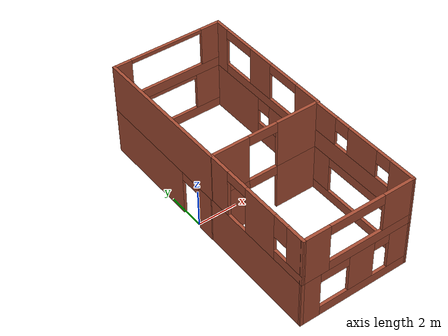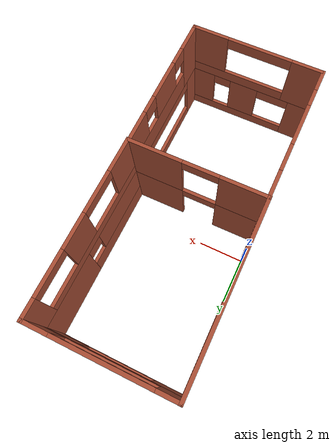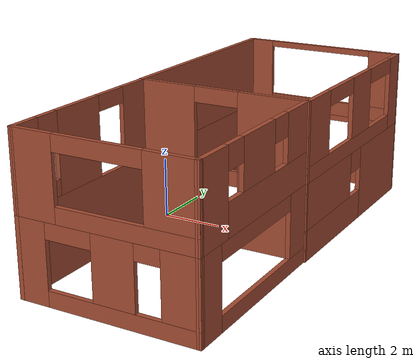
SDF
<sdf version="1.6">
 <model name="HouseTwoLevels">
  <pose>-1.03567 -0.470569 0 0 -0 0</pose>
  <link name="Wall_10">
   <pose>3.85116 -6.69618 0 0 -0 0</pose>
   <visual name="Wall_10_Visual_0">
    <pose>-2.4133 0 1.25 0 -0 0</pose>
    <geometry><box><size>1.01353 0.15 2.5</size></box></geometry>
    <material>
     <script><uri>file://media/materials/scripts/gazebo.material</uri><name>Gazebo/Bricks</name></script>
     <ambient>1 1 1 1</ambient>
    </material>
   </visual>
   <collision name="Wall_10_Collision_0">
    <geometry><box><size>1.01353 0.15 2.5</size></box></geometry>
    <pose>-2.4133 0 1.25 0 -0 0</pose>
   </collision>
   <visual name="Wall_10_Visual_1">
    <pose>0.506767 0 0.25 0 -0 0</pose>
    <geometry><box><size>4.8266 0.15 0.5</size></box></geometry>
    <material>
     <script><uri>file://media/materials/scripts/gazebo.material</uri><name>Gazebo/Bricks</name></script>
     <ambient>1 1 1 1</ambient>
    </material>
   </visual>
   <collision name="Wall_10_Collision_1">
    <geometry><box><size>4.8266 0.15 0.5</size></box></geometry>
    <pose>0.506767 0 0.25 0 -0 0</pose>
   </collision>
   <visual name="Wall_10_Visual_2">
    <pose>0.267522 0 1.5 0 -0 0</pose>
    <geometry><box><size>1.34811 0.15 2</size></box></geometry>
    <material>
     <script><uri>file://media/materials/scripts/gazebo.material</uri><name>Gazebo/Bricks</name></script>
     <ambient>1 1 1 1</ambient>
    </material>
   </visual>
   <collision name="Wall_10_Collision_2">
    <geometry><box><size>1.34811 0.15 2</size></box></geometry>
    <pose>0.267522 0 1.5 0 -0 0</pose>
   </collision>
   <visual name="Wall_10_Visual_3">
    <pose>2.33082 0 1.5 0 -0 0</pose>
    <geometry><box><size>1.17849 0.15 2</size></box></geometry>
    <material>
     <script><uri>file://media/materials/scripts/gazebo.material</uri><name>Gazebo/Bricks</name></script>
     <ambient>1 1 1 1</ambient>
    </material>
   </visual>
   <collision name="Wall_10_Collision_3">
    <geometry><box><size>1.17849 0.15 2</size></box></geometry>
    <pose>2.33082 0 1.5 0 -0 0</pose>
   </collision>
   <visual name="Wall_10_Visual_4">
    <pose>-1.15653 0 2.25 0 -0 0</pose>
    <geometry><box><size>1.5 0.15 0.5</size></box></geometry>
    <material>
     <script><uri>file://media/materials/scripts/gazebo.material</uri><name>Gazebo/Bricks</name></script>
     <ambient>1 1 1 1</ambient>
    </material>
   </visual>
   <collision name="Wall_10_Collision_4">
    <geometry><box><size>1.5 0.15 0.5</size></box></geometry>
    <pose>-1.15653 0 2.25 0 -0 0</pose>
   </collision>
   <visual name="Wall_10_Visual_5">
    <pose>1.34157 0 2.25 0 -0 0</pose>
    <geometry><box><size>0.8 0.15 0.5</size></box></geometry>
    <material>
     <script><uri>file://media/materials/scripts/gazebo.material</uri><name>Gazebo/Bricks</name></script>
     <ambient>1 1 1 1</ambient>
    </material>
   </visual>
   <collision name="Wall_10_Collision_5">
    <geometry><box><size>0.8 0.15 0.5</size></box></geometry>
    <pose>1.34157 0 2.25 0 -0 0</pose>
   </collision>
  </link>
  <link name="Wall_11">
   <pose>6.6731 -3.6892 0 0 -0 1.57849</pose>
   <visual name="Wall_11_Visual_0">
    <pose>-2.56461 0 1.25 0 -0 0</pose>
    <geometry><box><size>1.03492 0.15 2.5</size></box></geometry>
    <material>
     <script><uri>file://media/materials/scripts/gazebo.material</uri><name>Gazebo/Bricks</name></script>
     <ambient>1 1 1 1</ambient>
    </material>
   </visual>
   <collision name="Wall_11_Collision_0">
    <geometry><box><size>1.03492 0.15 2.5</size></box></geometry>
    <pose>-2.56461 0 1.25 0 -0 0</pose>
   </collision>
   <visual name="Wall_11_Visual_1">
    <pose>0.517459 0 0.25 0 -0 0</pose>
    <geometry><box><size>5.12922 0.15 0.5</size></box></geometry>
    <material>
     <script><uri>file://media/materials/scripts/gazebo.material</uri><name>Gazebo/Bricks</name></script>
     <ambient>1 1 1 1</ambient>
    </material>
   </visual>
   <collision name="Wall_11_Collision_1">
    <geometry><box><size>5.12922 0.15 0.5</size></box></geometry>
    <pose>0.517459 0 0.25 0 -0 0</pose>
   </collision>
   <visual name="Wall_11_Visual_2">
    <pose>2.51746 0 1.5 0 -0 0</pose>
    <geometry><box><size>1.12922 0.15 2</size></box></geometry>
    <material>
     <script><uri>file://media/materials/scripts/gazebo.material</uri><name>Gazebo/Bricks</name></script>
     <ambient>1 1 1 1</ambient>
    </material>
   </visual>
   <collision name="Wall_11_Collision_2">
    <geometry><box><size>1.12922 0.15 2</size></box></geometry>
    <pose>2.51746 0 1.5 0 -0 0</pose>
   </collision>
   <visual name="Wall_11_Visual_3">
    <pose>-0.04715 0 2.25 0 -0 0</pose>
    <geometry><box><size>4 0.15 0.5</size></box></geometry>
    <material>
     <script><uri>file://media/materials/scripts/gazebo.material</uri><name>Gazebo/Bricks</name></script>
     <ambient>1 1 1 1</ambient>
    </material>
   </visual>
   <collision name="Wall_11_Collision_3">
    <geometry><box><size>4 0.15 0.5</size></box></geometry>
    <pose>-0.04715 0 2.25 0 -0 0</pose>
   </collision>
  </link>
  <link name="Wall_2">
   <pose>1.01766 2.99555 0 0 0 -1.56765</pose>
   <visual name="Wall_2_Visual_0">
    <pose>-1.12434 0 1.25 0 -0 0</pose>
    <geometry><box><size>5.2569 0.15 2.5</size></box></geometry>
    <material>
     <script><uri>file://media/materials/scripts/gazebo.material</uri><name>Gazebo/Bricks</name></script>
     <ambient>1 1 1 1</ambient>
    </material>
   </visual>
   <collision name="Wall_2_Collision_0">
    <geometry><box><size>5.2569 0.15 2.5</size></box></geometry>
    <pose>-1.12434 0 1.25 0 -0 0</pose>
   </collision>
   <visual name="Wall_2_Visual_1">
    <pose>3.22845 0 1.25 0 -0 0</pose>
    <geometry><box><size>1.04867 0.15 2.5</size></box></geometry>
    <material>
     <script><uri>file://media/materials/scripts/gazebo.material</uri><name>Gazebo/Bricks</name></script>
     <ambient>1 1 1 1</ambient>
    </material>
   </visual>
   <collision name="Wall_2_Collision_1">
    <geometry><box><size>1.04867 0.15 2.5</size></box></geometry>
    <pose>3.22845 0 1.25 0 -0 0</pose>
   </collision>
   <visual name="Wall_2_Visual_2">
    <pose>2.10411 0 2.25 0 -0 0</pose>
    <geometry><box><size>1.2 0.15 0.5</size></box></geometry>
    <material>
     <script><uri>file://media/materials/scripts/gazebo.material</uri><name>Gazebo/Bricks</name></script>
     <ambient>1 1 1 1</ambient>
    </material>
   </visual>
   <collision name="Wall_2_Collision_2">
    <geometry><box><size>1.2 0.15 0.5</size></box></geometry>
    <pose>2.10411 0 2.25 0 -0 0</pose>
   </collision>
  </link>
  <link name="Wall_21">
   <collision name="Wall_21_Collision">
    <geometry><box><size>7.50557 0.15 2.5</size></box></geometry>
    <pose>0 0 1.25 0 -0 0</pose>
   </collision>
   <visual name="Wall_21_Visual">
    <pose>0 0 1.25 0 -0 0</pose>
    <geometry><box><size>7.50557 0.15 2.5</size></box></geometry>
    <material>
     <script><uri>file://media/materials/scripts/gazebo.material</uri><name>Gazebo/Bricks</name></script>
     <ambient>1 1 1 1</ambient>
    </material>
   </visual>
   <pose>1.00588 2.99544 2.5 0 0 -1.57085</pose>
  </link>
  <link name="Wall_24">
   <pose>3.86273 6.66175 2.5 0 0 -0.004082</pose>
   <visual name="Wall_24_Visual_0">
    <pose>-2.44486 0 1.25 0 -0 0</pose>
    <geometry><box><size>0.92733 0.15 2.5</size></box></geometry>
    <material>
     <script><uri>file://media/materials/scripts/gazebo.material</uri><name>Gazebo/Bricks</name></script>
     <ambient>1 1 1 1</ambient>
    </material>
   </visual>
   <collision name="Wall_24_Collision_0">
    <geometry><box><size>0.92733 0.15 2.5</size></box></geometry>
    <pose>-2.44486 0 1.25 0 -0 0</pose>
   </collision>
   <visual name="Wall_24_Visual_1">
    <pose>0.463665 0 0.25 0 -0 0</pose>
    <geometry><box><size>4.88971 0.15 0.5</size></box></geometry>
    <material>
     <script><uri>file://media/materials/scripts/gazebo.material</uri><name>Gazebo/Bricks</name></script>
     <ambient>1 1 1 1</ambient>
    </material>
   </visual>
   <collision name="Wall_24_Collision_1">
    <geometry><box><size>4.88971 0.15 0.5</size></box></geometry>
    <pose>0.463665 0 0.25 0 -0 0</pose>
   </collision>
   <visual name="Wall_24_Visual_2">
    <pose>2.36367 0 1.5 0 -0 0</pose>
    <geometry><box><size>1.08971 0.15 2</size></box></geometry>
    <material>
     <script><uri>file://media/materials/scripts/gazebo.material</uri><name>Gazebo/Bricks</name></script>
     <ambient>1 1 1 1</ambient>
    </material>
   </visual>
   <collision name="Wall_24_Collision_2">
    <geometry><box><size>1.08971 0.15 2</size></box></geometry>
    <pose>2.36367 0 1.5 0 -0 0</pose>
   </collision>
   <visual name="Wall_24_Visual_3">
    <pose>-0.081192 0 2.4 0 -0 0</pose>
    <geometry><box><size>3.8 0.15 0.2</size></box></geometry>
    <material>
     <script><uri>file://media/materials/scripts/gazebo.material</uri><name>Gazebo/Bricks</name></script>
     <ambient>1 1 1 1</ambient>
    </material>
   </visual>
   <collision name="Wall_24_Collision_3">
    <geometry><box><size>3.8 0.15 0.2</size></box></geometry>
    <pose>-0.081192 0 2.4 0 -0 0</pose>
   </collision>
  </link>
  <link name="Wall_25">
   <pose>6.69623 2.99555 2.5 0 0 -1.5708</pose>
   <visual name="Wall_25_Visual_0">
    <pose>-3.29787 0 1.25 0 -0 0</pose>
    <geometry><box><size>0.863534 0.15 2.5</size></box></geometry>
    <material>
     <script><uri>file://media/materials/scripts/gazebo.material</uri><name>Gazebo/Bricks</name></script>
     <ambient>1 1 1 1</ambient>
    </material>
   </visual>
   <collision name="Wall_25_Collision_0">
    <geometry><box><size>0.863534 0.15 2.5</size></box></geometry>
    <pose>-3.29787 0 1.25 0 -0 0</pose>
   </collision>
   <visual name="Wall_25_Visual_1">
    <pose>0.431767 0 0.25 0 -0 0</pose>
    <geometry><box><size>6.59574 0.15 0.5</size></box></geometry>
    <material>
     <script><uri>file://media/materials/scripts/gazebo.material</uri><name>Gazebo/Bricks</name></script>
     <ambient>1 1 1 1</ambient>
    </material>
   </visual>
   <collision name="Wall_25_Collision_1">
    <geometry><box><size>6.59574 0.15 0.5</size></box></geometry>
    <pose>0.431767 0 0.25 0 -0 0</pose>
   </collision>
   <visual name="Wall_25_Visual_2">
    <pose>-0.335394 0 1.5 0 -0 0</pose>
    <geometry><box><size>1.46142 0.15 2</size></box></geometry>
    <material>
     <script><uri>file://media/materials/scripts/gazebo.material</uri><name>Gazebo/Bricks</name></script>
     <ambient>1 1 1 1</ambient>
    </material>
   </visual>
   <collision name="Wall_25_Collision_2">
    <geometry><box><size>1.46142 0.15 2</size></box></geometry>
    <pose>-0.335394 0 1.5 0 -0 0</pose>
   </collision>
   <visual name="Wall_25_Visual_3">
    <pose>2.96247 0 1.5 0 -0 0</pose>
    <geometry><box><size>1.53432 0.15 2</size></box></geometry>
    <material>
     <script><uri>file://media/materials/scripts/gazebo.material</uri><name>Gazebo/Bricks</name></script>
     <ambient>1 1 1 1</ambient>
    </material>
   </visual>
   <collision name="Wall_25_Collision_3">
    <geometry><box><size>1.53432 0.15 2</size></box></geometry>
    <pose>2.96247 0 1.5 0 -0 0</pose>
   </collision>
   <visual name="Wall_25_Visual_4">
    <pose>-1.9661 0 2.25 0 -0 0</pose>
    <geometry><box><size>1.8 0.15 0.5</size></box></geometry>
    <material>
     <script><uri>file://media/materials/scripts/gazebo.material</uri><name>Gazebo/Bricks</name></script>
     <ambient>1 1 1 1</ambient>
    </material>
   </visual>
   <collision name="Wall_25_Collision_4">
    <geometry><box><size>1.8 0.15 0.5</size></box></geometry>
    <pose>-1.9661 0 2.25 0 -0 0</pose>
   </collision>
   <visual name="Wall_25_Visual_5">
    <pose>1.29531 0 2.25 0 -0 0</pose>
    <geometry><box><size>1.8 0.15 0.5</size></box></geometry>
    <material>
     <script><uri>file://media/materials/scripts/gazebo.material</uri><name>Gazebo/Bricks</name></script>
     <ambient>1 1 1 1</ambient>
    </material>
   </visual>
   <collision name="Wall_25_Collision_5">
    <geometry><box><size>1.8 0.15 0.5</size></box></geometry>
    <pose>1.29531 0 2.25 0 -0 0</pose>
   </collision>
  </link>
  <link name="Wall_26">
   <pose>3.86295 -0.670759 2.5 0 0 -3.13747</pose>
   <visual name="Wall_26_Visual_0">
    <pose>-1.74269 0 1.25 0 -0 0</pose>
    <geometry><box><size>2.33166 0.15 2.5</size></box></geometry>
    <material>
     <script><uri>file://media/materials/scripts/gazebo.material</uri><name>Gazebo/Bricks</name></script>
     <ambient>1 1 1 1</ambient>
    </material>
   </visual>
   <collision name="Wall_26_Collision_0">
    <geometry><box><size>2.33166 0.15 2.5</size></box></geometry>
    <pose>-1.74269 0 1.25 0 -0 0</pose>
   </collision>
   <visual name="Wall_26_Visual_1">
    <pose>1.91583 0 1.25 0 -0 0</pose>
    <geometry><box><size>1.98539 0.15 2.5</size></box></geometry>
    <material>
     <script><uri>file://media/materials/scripts/gazebo.material</uri><name>Gazebo/Bricks</name></script>
     <ambient>1 1 1 1</ambient>
    </material>
   </visual>
   <collision name="Wall_26_Collision_1">
    <geometry><box><size>1.98539 0.15 2.5</size></box></geometry>
    <pose>1.91583 0 1.25 0 -0 0</pose>
   </collision>
   <visual name="Wall_26_Visual_2">
    <pose>0.173134 0 2.25 0 -0 0</pose>
    <geometry><box><size>1.5 0.15 0.5</size></box></geometry>
    <material>
     <script><uri>file://media/materials/scripts/gazebo.material</uri><name>Gazebo/Bricks</name></script>
     <ambient>1 1 1 1</ambient>
    </material>
   </visual>
   <collision name="Wall_26_Collision_2">
    <geometry><box><size>1.5 0.15 0.5</size></box></geometry>
    <pose>0.173134 0 2.25 0 -0 0</pose>
   </collision>
  </link>
  <link name="Wall_27">
   <pose>1.01767 -3.68943 2.5 0 0 -1.57479</pose>
   <visual name="Wall_27_Visual_0">
    <pose>-2.4539 0 1.25 0 -0 0</pose>
    <geometry><box><size>1.25621 0.15 2.5</size></box></geometry>
    <material>
     <script><uri>file://media/materials/scripts/gazebo.material</uri><name>Gazebo/Bricks</name></script>
     <ambient>1 1 1 1</ambient>
    </material>
   </visual>
   <collision name="Wall_27_Collision_0">
    <geometry><box><size>1.25621 0.15 2.5</size></box></geometry>
    <pose>-2.4539 0 1.25 0 -0 0</pose>
   </collision>
   <visual name="Wall_27_Visual_1">
    <pose>0.319874 0 1.25 0 -0 0</pose>
    <geometry><box><size>1.89133 0.15 2.5</size></box></geometry>
    <material>
     <script><uri>file://media/materials/scripts/gazebo.material</uri><name>Gazebo/Bricks</name></script>
     <ambient>1 1 1 1</ambient>
    </material>
   </visual>
   <collision name="Wall_27_Collision_1">
    <geometry><box><size>1.89133 0.15 2.5</size></box></geometry>
    <pose>0.319874 0 1.25 0 -0 0</pose>
   </collision>
   <visual name="Wall_27_Visual_2">
    <pose>2.17377 0 0.25 0 -0 0</pose>
    <geometry><box><size>1.81646 0.15 0.5</size></box></geometry>
    <material>
     <script><uri>file://media/materials/scripts/gazebo.material</uri><name>Gazebo/Bricks</name></script>
     <ambient>1 1 1 1</ambient>
    </material>
   </visual>
   <collision name="Wall_27_Collision_2">
    <geometry><box><size>1.81646 0.15 0.5</size></box></geometry>
    <pose>2.17377 0 0.25 0 -0 0</pose>
   </collision>
   <visual name="Wall_27_Visual_3">
    <pose>2.57377 0 1.5 0 -0 0</pose>
    <geometry><box><size>1.01646 0.15 2</size></box></geometry>
    <material>
     <script><uri>file://media/materials/scripts/gazebo.material</uri><name>Gazebo/Bricks</name></script>
     <ambient>1 1 1 1</ambient>
    </material>
   </visual>
   <collision name="Wall_27_Collision_3">
    <geometry><box><size>1.01646 0.15 2</size></box></geometry>
    <pose>2.57377 0 1.5 0 -0 0</pose>
   </collision>
   <visual name="Wall_27_Visual_4">
    <pose>1.66554 0 1.9 0 -0 0</pose>
    <geometry><box><size>0.8 0.15 1.2</size></box></geometry>
    <material>
     <script><uri>file://media/materials/scripts/gazebo.material</uri><name>Gazebo/Bricks</name></script>
     <ambient>1 1 1 1</ambient>
    </material>
   </visual>
   <collision name="Wall_27_Collision_4">
    <geometry><box><size>0.8 0.15 1.2</size></box></geometry>
    <pose>1.66554 0 1.9 0 -0 0</pose>
   </collision>
   <visual name="Wall_27_Visual_5">
    <pose>-1.22579 0 2.25 0 -0 0</pose>
    <geometry><box><size>1.2 0.15 0.5</size></box></geometry>
    <material>
     <script><uri>file://media/materials/scripts/gazebo.material</uri><name>Gazebo/Bricks</name></script>
     <ambient>1 1 1 1</ambient>
    </material>
   </visual>
   <collision name="Wall_27_Collision_5">
    <geometry><box><size>1.2 0.15 0.5</size></box></geometry>
    <pose>-1.22579 0 2.25 0 -0 0</pose>
   </collision>
  </link>
  <link name="Wall_28">
   <pose>3.85095 -6.6963 2.5 0 -0 4.5e-05</pose>
   <visual name="Wall_28_Visual_0">
    <pose>-2.21786 0 1.25 0 -0 0</pose>
    <geometry><box><size>1.4044 0.15 2.5</size></box></geometry>
    <material>
     <script><uri>file://media/materials/scripts/gazebo.material</uri><name>Gazebo/Bricks</name></script>
     <ambient>1 1 1 1</ambient>
    </material>
   </visual>
   <collision name="Wall_28_Collision_0">
    <geometry><box><size>1.4044 0.15 2.5</size></box></geometry>
    <pose>-2.21786 0 1.25 0 -0 0</pose>
   </collision>
   <visual name="Wall_28_Visual_1">
    <pose>0.702202 0 0.25 0 -0 0</pose>
    <geometry><box><size>4.43573 0.15 0.5</size></box></geometry>
    <material>
     <script><uri>file://media/materials/scripts/gazebo.material</uri><name>Gazebo/Bricks</name></script>
     <ambient>1 1 1 1</ambient>
    </material>
   </visual>
   <collision name="Wall_28_Collision_1">
    <geometry><box><size>4.43573 0.15 0.5</size></box></geometry>
    <pose>0.702202 0 0.25 0 -0 0</pose>
   </collision>
   <visual name="Wall_28_Visual_2">
    <pose>2.1022 0 1.5 0 -0 0</pose>
    <geometry><box><size>1.63573 0.15 2</size></box></geometry>
    <material>
     <script><uri>file://media/materials/scripts/gazebo.material</uri><name>Gazebo/Bricks</name></script>
     <ambient>1 1 1 1</ambient>
    </material>
   </visual>
   <collision name="Wall_28_Collision_2">
    <geometry><box><size>1.63573 0.15 2</size></box></geometry>
    <pose>2.1022 0 1.5 0 -0 0</pose>
   </collision>
   <visual name="Wall_28_Visual_3">
    <pose>-0.115662 0 2.25 0 -0 0</pose>
    <geometry><box><size>2.8 0.15 0.5</size></box></geometry>
    <material>
     <script><uri>file://media/materials/scripts/gazebo.material</uri><name>Gazebo/Bricks</name></script>
     <ambient>1 1 1 1</ambient>
    </material>
   </visual>
   <collision name="Wall_28_Collision_3">
    <geometry><box><size>2.8 0.15 0.5</size></box></geometry>
    <pose>-0.115662 0 2.25 0 -0 0</pose>
   </collision>
  </link>
  <link name="Wall_29">
   <pose>6.6731 -3.6892 2.5 0 -0 1.57849</pose>
   <visual name="Wall_29_Visual_0">
    <pose>-2.3893 0 1.25 0 -0 0</pose>
    <geometry><box><size>1.38555 0.15 2.5</size></box></geometry>
    <material>
     <script><uri>file://media/materials/scripts/gazebo.material</uri><name>Gazebo/Bricks</name></script>
     <ambient>1 1 1 1</ambient>
    </material>
   </visual>
   <collision name="Wall_29_Collision_0">
    <geometry><box><size>1.38555 0.15 2.5</size></box></geometry>
    <pose>-2.3893 0 1.25 0 -0 0</pose>
   </collision>
   <visual name="Wall_29_Visual_1">
    <pose>0.692773 0 0.5 0 -0 0</pose>
    <geometry><box><size>4.77859 0.15 1</size></box></geometry>
    <material>
     <script><uri>file://media/materials/scripts/gazebo.material</uri><name>Gazebo/Bricks</name></script>
     <ambient>1 1 1 1</ambient>
    </material>
   </visual>
   <collision name="Wall_29_Collision_1">
    <geometry><box><size>4.77859 0.15 1</size></box></geometry>
    <pose>0.692773 0 0.5 0 -0 0</pose>
   </collision>
   <visual name="Wall_29_Visual_2">
    <pose>-0.000623 0 1.75 0 -0 0</pose>
    <geometry><box><size>1.7918 0.15 1.5</size></box></geometry>
    <material>
     <script><uri>file://media/materials/scripts/gazebo.material</uri><name>Gazebo/Bricks</name></script>
     <ambient>1 1 1 1</ambient>
    </material>
   </visual>
   <collision name="Wall_29_Collision_2">
    <geometry><box><size>1.7918 0.15 1.5</size></box></geometry>
    <pose>-0.000623 0 1.75 0 -0 0</pose>
   </collision>
   <visual name="Wall_29_Visual_3">
    <pose>2.38867 0 1.75 0 -0 0</pose>
    <geometry><box><size>1.38679 0.15 1.5</size></box></geometry>
    <material>
     <script><uri>file://media/materials/scripts/gazebo.material</uri><name>Gazebo/Bricks</name></script>
     <ambient>1 1 1 1</ambient>
    </material>
   </visual>
   <collision name="Wall_29_Collision_3">
    <geometry><box><size>1.38679 0.15 1.5</size></box></geometry>
    <pose>2.38867 0 1.75 0 -0 0</pose>
   </collision>
   <visual name="Wall_29_Visual_4">
    <pose>-1.29652 0 2.15 0 -0 0</pose>
    <geometry><box><size>0.8 0.15 0.7</size></box></geometry>
    <material>
     <script><uri>file://media/materials/scripts/gazebo.material</uri><name>Gazebo/Bricks</name></script>
     <ambient>1 1 1 1</ambient>
    </material>
   </visual>
   <collision name="Wall_29_Collision_4">
    <geometry><box><size>0.8 0.15 0.7</size></box></geometry>
    <pose>-1.29652 0 2.15 0 -0 0</pose>
   </collision>
   <visual name="Wall_29_Visual_5">
    <pose>1.29528 0 2.15 0 -0 0</pose>
    <geometry><box><size>0.8 0.15 0.7</size></box></geometry>
    <material>
     <script><uri>file://media/materials/scripts/gazebo.material</uri><name>Gazebo/Bricks</name></script>
     <ambient>1 1 1 1</ambient>
    </material>
   </visual>
   <collision name="Wall_29_Collision_5">
    <geometry><box><size>0.8 0.15 0.7</size></box></geometry>
    <pose>1.29528 0 2.15 0 -0 0</pose>
   </collision>
  </link>
  <link name="Wall_6">
   <pose>3.86273 6.66175 0 0 0 -0.004082</pose>
   <visual name="Wall_6_Visual_0">
    <pose>-2.23329 0 1.25 0 -0 0</pose>
    <geometry><box><size>1.35046 0.15 2.5</size></box></geometry>
    <material>
     <script><uri>file://media/materials/scripts/gazebo.material</uri><name>Gazebo/Bricks</name></script>
     <ambient>1 1 1 1</ambient>
    </material>
   </visual>
   <collision name="Wall_6_Collision_0">
    <geometry><box><size>1.35046 0.15 2.5</size></box></geometry>
    <pose>-2.23329 0 1.25 0 -0 0</pose>
   </collision>
   <visual name="Wall_6_Visual_1">
    <pose>0.67523 0 0.25 0 -0 0</pose>
    <geometry><box><size>4.46659 0.15 0.5</size></box></geometry>
    <material>
     <script><uri>file://media/materials/scripts/gazebo.material</uri><name>Gazebo/Bricks</name></script>
     <ambient>1 1 1 1</ambient>
    </material>
   </visual>
   <collision name="Wall_6_Collision_1">
    <geometry><box><size>4.46659 0.15 0.5</size></box></geometry>
    <pose>0.67523 0 0.25 0 -0 0</pose>
   </collision>
   <visual name="Wall_6_Visual_2">
    <pose>2.17523 0 1.5 0 -0 0</pose>
    <geometry><box><size>1.46659 0.15 2</size></box></geometry>
    <material>
     <script><uri>file://media/materials/scripts/gazebo.material</uri><name>Gazebo/Bricks</name></script>
     <ambient>1 1 1 1</ambient>
    </material>
   </visual>
   <collision name="Wall_6_Collision_2">
    <geometry><box><size>1.46659 0.15 2</size></box></geometry>
    <pose>2.17523 0 1.5 0 -0 0</pose>
   </collision>
   <visual name="Wall_6_Visual_3">
    <pose>-0.058062 0 2.4 0 -0 0</pose>
    <geometry><box><size>3 0.15 0.2</size></box></geometry>
    <material>
     <script><uri>file://media/materials/scripts/gazebo.material</uri><name>Gazebo/Bricks</name></script>
     <ambient>1 1 1 1</ambient>
    </material>
   </visual>
   <collision name="Wall_6_Collision_3">
    <geometry><box><size>3 0.15 0.2</size></box></geometry>
    <pose>-0.058062 0 2.4 0 -0 0</pose>
   </collision>
  </link>
  <link name="Wall_7">
   <pose>6.69623 2.99555 0 0 0 -1.5708</pose>
   <visual name="Wall_7_Visual_0">
    <pose>-2.08799 0 1.25 0 -0 0</pose>
    <geometry><box><size>3.28345 0.15 2.5</size></box></geometry>
    <material>
     <script><uri>file://media/materials/scripts/gazebo.material</uri><name>Gazebo/Bricks</name></script>
     <ambient>1 1 1 1</ambient>
    </material>
   </visual>
   <collision name="Wall_7_Collision_0">
    <geometry><box><size>3.28345 0.15 2.5</size></box></geometry>
    <pose>-2.08799 0 1.25 0 -0 0</pose>
   </collision>
   <visual name="Wall_7_Visual_1">
    <pose>1.64172 0 0.5 0 -0 0</pose>
    <geometry><box><size>4.17597 0.15 1</size></box></geometry>
    <material>
     <script><uri>file://media/materials/scripts/gazebo.material</uri><name>Gazebo/Bricks</name></script>
     <ambient>1 1 1 1</ambient>
    </material>
   </visual>
   <collision name="Wall_7_Collision_1">
    <geometry><box><size>4.17597 0.15 1</size></box></geometry>
    <pose>1.64172 0 0.5 0 -0 0</pose>
   </collision>
   <visual name="Wall_7_Visual_2">
    <pose>2.04172 0 1.75 0 -0 0</pose>
    <geometry><box><size>3.37597 0.15 1.5</size></box></geometry>
    <material>
     <script><uri>file://media/materials/scripts/gazebo.material</uri><name>Gazebo/Bricks</name></script>
     <ambient>1 1 1 1</ambient>
    </material>
   </visual>
   <collision name="Wall_7_Collision_2">
    <geometry><box><size>3.37597 0.15 1.5</size></box></geometry>
    <pose>2.04172 0 1.75 0 -0 0</pose>
   </collision>
   <visual name="Wall_7_Visual_3">
    <pose>-0.046261 0 2.15 0 -0 0</pose>
    <geometry><box><size>0.8 0.15 0.7</size></box></geometry>
    <material>
     <script><uri>file://media/materials/scripts/gazebo.material</uri><name>Gazebo/Bricks</name></script>
     <ambient>1 1 1 1</ambient>
    </material>
   </visual>
   <collision name="Wall_7_Collision_3">
    <geometry><box><size>0.8 0.15 0.7</size></box></geometry>
    <pose>-0.046261 0 2.15 0 -0 0</pose>
   </collision>
  </link>
  <link name="Wall_8">
   <pose>3.86273 -0.670653 0 0 0 -3.13751</pose>
   <visual name="Wall_8_Visual_0">
    <pose>-1.74255 0 1.25 0 -0 0</pose>
    <geometry><box><size>2.33195 0.15 2.5</size></box></geometry>
    <material>
     <script><uri>file://media/materials/scripts/gazebo.material</uri><name>Gazebo/Bricks</name></script>
     <ambient>1 1 1 1</ambient>
    </material>
   </visual>
   <collision name="Wall_8_Collision_0">
    <geometry><box><size>2.33195 0.15 2.5</size></box></geometry>
    <pose>-1.74255 0 1.25 0 -0 0</pose>
   </collision>
   <visual name="Wall_8_Visual_1">
    <pose>1.91598 0 1.25 0 -0 0</pose>
    <geometry><box><size>1.98509 0.15 2.5</size></box></geometry>
    <material>
     <script><uri>file://media/materials/scripts/gazebo.material</uri><name>Gazebo/Bricks</name></script>
     <ambient>1 1 1 1</ambient>
    </material>
   </visual>
   <collision name="Wall_8_Collision_1">
    <geometry><box><size>1.98509 0.15 2.5</size></box></geometry>
    <pose>1.91598 0 1.25 0 -0 0</pose>
   </collision>
   <visual name="Wall_8_Visual_2">
    <pose>0.173431 0 2.25 0 -0 0</pose>
    <geometry><box><size>1.5 0.15 0.5</size></box></geometry>
    <material>
     <script><uri>file://media/materials/scripts/gazebo.material</uri><name>Gazebo/Bricks</name></script>
     <ambient>1 1 1 1</ambient>
    </material>
   </visual>
   <collision name="Wall_8_Collision_2">
    <geometry><box><size>1.5 0.15 0.5</size></box></geometry>
    <pose>0.173431 0 2.25 0 -0 0</pose>
   </collision>
  </link>
  <link name="Wall_9">
   <collision name="Wall_9_Collision">
    <geometry><box><size>6.16467 0.15 2.5</size></box></geometry>
    <pose>0 0 1.25 0 -0 0</pose>
   </collision>
   <visual name="Wall_9_Visual">
    <pose>0 0 1.25 0 -0 0</pose>
    <geometry><box><size>6.16467 0.15 2.5</size></box></geometry>
    <material>
     <script><uri>file://media/materials/scripts/gazebo.material</uri><name>Gazebo/Bricks</name></script>
     <ambient>1 1 1 1</ambient>
    </material>
   </visual>
   <pose>1.01766 -3.6892 0 0 0 -1.57464</pose>
  </link>
  <static>1</static>
 </model>
</sdf>
